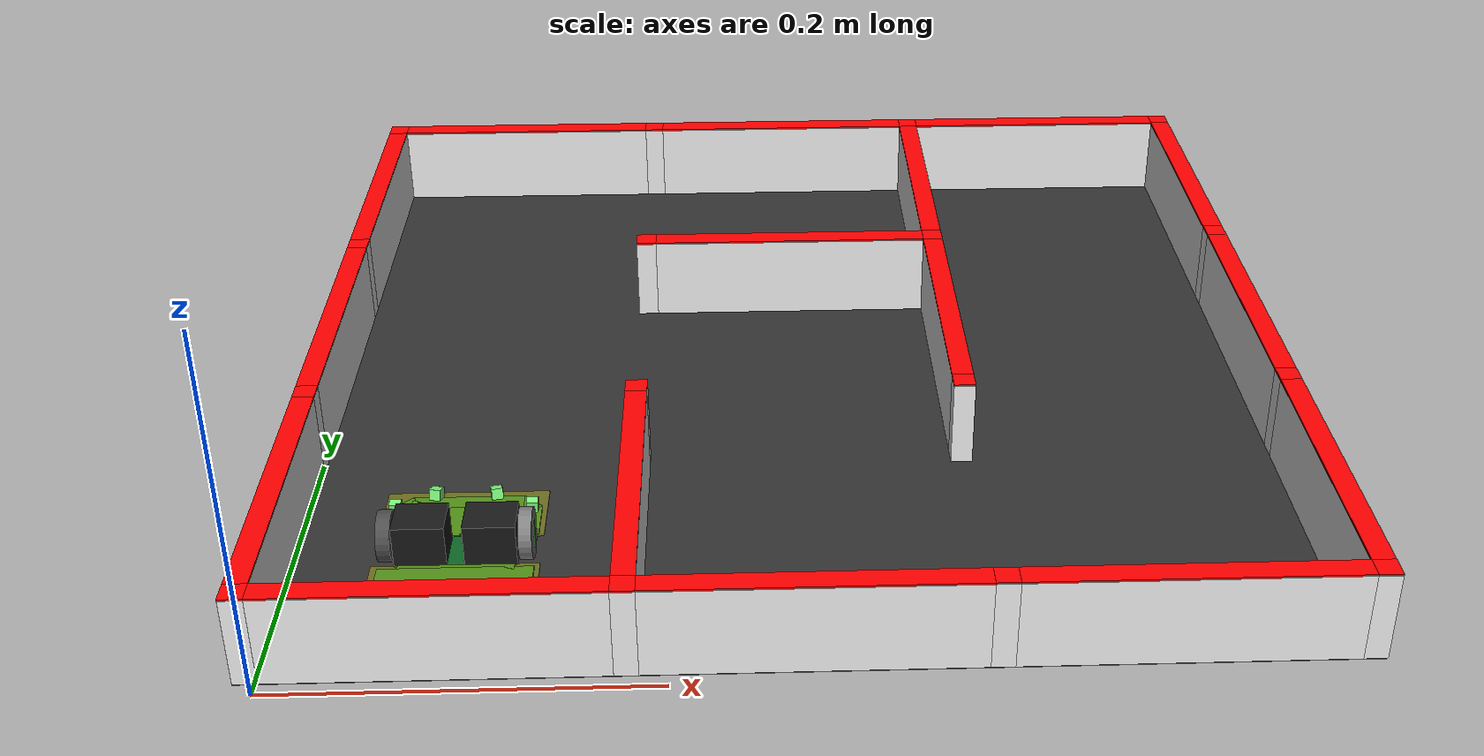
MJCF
<mujoco>
<compiler angle="degree" coordinate="local" inertiafromgeom="true" />
    <option integrator="RK4" timestep="0.0001" />
    <visual>
   <quality shadowsize="0" />
</visual>

    <include file="./micromouse.xml"/>
    <include file="./maze3x3.xml"/>

</mujoco>

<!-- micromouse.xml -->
<mujoco model="micromouse">
<option>
    </option>
    <worldbody>
        <light diffuse=".5 .5 .5" pos="0 0 10" dir="0 0 -1"/>

         <body pos="0.09 0.09 0.015" euler="0 0 90">
            <freejoint />
            <body name="torso">
                <geom name="mein_body1" type="box" friction="0.0 0.0 0.0" size="0.05 0.03 0.0008" rgba="0.05 0.4 0.15 1" pos="0 0 0.002" mass="4.65e-3"/>
                <geom name="mein_body_chip1" type="box" friction="0.0 0.0 0.0" size="0.00707 0.00707 0.0008" rgba="0.05 0.4 0.15 1" pos="0.04 0.03 0.002" euler="0 0 45" mass="4.65e-3"/>
                <geom name="mein_body_chip2" type="box" friction="0.0 0.0 0.0" size="0.00707 0.00707 0.0008" rgba="0.05 0.4 0.15 1" pos="0.04 -0.03 0.002" euler="0 0 45" mass="4.65e-3"/>
                <geom name="mein_body_chip3" type="box" friction="0.0 0.0 0.0" size="0.00707 0.00707 0.0008" rgba="0.05 0.4 0.15 1" pos="-0.04 0.03 0.002" euler="0 0 45" mass="4.65e-3"/>
                <geom name="mein_body_chip4" type="box" friction="0.0 0.0 0.0" size="0.00707 0.00707 0.0008" rgba="0.05 0.4 0.15 1" pos="-0.04 -0.03 0.002" euler="0 0 45" mass="4.65e-3"/>
                <geom name="mein_body4" type="box" friction="0.0 0.0 0.0" size="0.013 0.04 0.0008"  rgba="0.05 0.4 0.15 1" pos="-0.027 0 0.002" mass="4.65e-3"/>
                <geom name="mein_body5" type="box" friction="0.0 0.0 0.0" size="0.013 0.04 0.0008"  rgba="0.05 0.4 0.15 1" pos="0.027 0 0.002" mass="4.65e-3"/>
                <!--接触判定領域（この中に入ってるgeomが接触すると，センサ値としてその値を取得できる）-->
                <site name = "hit_box1" type = "box" size = "0.02 0.043 0.00078" pos="0.033 0 0.003" rgba="1 1 0 0.3"/>
                <site name = "hit_box2" type = "box" size = "0.02 0.043 0.00078" pos="-0.033 0 0.003" rgba="1 1 0 0.3"/>
            </body>

            <site name="sensor_left_front" type="box" size="0.003 0.003 0.003" pos="0.031 0.036 0.01" zaxis="1 0 0.01" rgba=".5 1 .5 1"/>
              <!-- zaxisの３つめ　0.1でちょい上向き -->
            <site name="sensor_left_side" type="box" size="0.003 0.003 0.003" pos="0.043 0.016 0.01" zaxis="0.25 1 0" rgba=".5 1 .5 1"/>
            <site name="sensor_right_front" type="box" size="0.003 0.003 0.003" pos="0.031 -0.036 0.01" zaxis="1 0 0.01" rgba=".5 1 .5 1"/>
            <site name="sensor_right_side" type="box" size="0.003 0.003 0.003" pos="0.043 -0.016 0.01" zaxis="0.25 -1 0" rgba=".5 1 .5 1"/>
            <site name="accerometer" type="sphere" size="0.001 0.001" pos="0 0 0.0"/>
            <site name="gyro" type="box" size="0.001 0.001 0.001" pos="0 0 0"/>
            <site name="velocimeter" type="box" size="0.001 0.001 0.001" pos="0 0 0"/>

             <body name="left wheel" pos="-0.0 0.036 0.0135" zaxis="0 1 0">
                <joint name="left wheel joint" type="hinge" axis="0 0 1" limited="false" damping='9.6e-5' />
                <geom name="left_wheel" type="cylinder" size="0.0135 0.0035" friction="1.0 0 0"  rgba=".3 .3 0.3 1" mass="5e-3"/>
                <site type="box" size = "0.0012 0.008 0.004" rgba=".5 1 .5 1"/>
            </body>

            <body name="right wheel" pos="-0.0 -0.036 0.0135" zaxis="0 1 0">
                <joint name="right wheel joint" type="hinge" axis="0 0 1" limited="false" damping='9.6e-5' />
                <geom type="cylinder" size="0.0135 0.0035" friction="1.0 0 0" mass="5e-3"/> #直径27mmのタイヤ
                <site type="box" size = "0.0012 0.008 0.004" rgba=".5 1 .5 1"/>
            </body>

            <body name="motorbox1" pos="0 -0.018 0.0135" >
                <geom type="box" size="0.0117 0.0135 0.0117" rgba="0.1 0.1 0.1 1" mass="50e-3"/>
            </body>

            <body name="motorbox2" pos="0 0.018 0.0135">
                <geom type="box" size="0.0117 0.0135 0.0117" rgba="0.1 0.1 0.1 1" mass="50e-3"/>
            </body>

            <!--トラッキングカメラを装着-->
            <camera name="camera_name" mode="track" pos="-0.4 0 0.8" euler="0 -30 -90" fovy="60"/>

        </body>
    </worldbody>

    <actuator>
        <motor name="right" joint="right wheel joint" gear="9.0e-3" ctrllimited="true" ctrlrange="-1 1"/> ctrlrangeで入力の値の範囲を決められる
        <motor name="left"  joint="left wheel joint"  gear="9.0e-3" ctrllimited="true" ctrlrange="-1 1"/>
    </actuator>

    <sensor>
        <rangefinder name="LF" site="sensor_left_front" cutoff="0.3"/>
        <rangefinder name="LS" site="sensor_left_side" cutoff="0.3"/>
        <rangefinder name="RF" site="sensor_right_front" cutoff="0.3"/>
        <rangefinder name="RS" site="sensor_right_side" cutoff="0.3"/>
        <touch name = "HB1" site = "hit_box1"/>
        <touch name = "HB2" site = "hit_box2"/>
        <accelerometer name="Accel" site="accerometer"/>
        <gyro name="Gyro" site="gyro" noise="0.001"/>
        <velocimeter name="Veloci" site="velocimeter"/>
    </sensor>

</mujoco>

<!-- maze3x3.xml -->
<mujoco model="maze">
<compiler angle="degree" coordinate="local" inertiafromgeom="true" />
    <option integrator="RK4" />
    <worldbody>
        <!--ベース板-->
        <body name="base_plate" pos="0.27 0.27 0.0125">
        <geom type="plane" mass="0.1" size="0.276 0.276 0.006" rgba="0.2 0.2 0.2 1" friction="0.0 0.0 0.0"/>
        </body>

        <!-- Column 1-->
        <body pos="0.0 0.0 0.037">
            <body pos="0 0 -0.0005">
                <geom type="box" mass="0.01" size="0.006 0.006 0.0245" rgba="1 1 1 1"/>
            </body>
            <!--柱上赤蓋-->
            <body pos="0 0 0.0245">
                <geom type="box" mass="0.01" size="0.006 0.006 0.0005" rgba="1 0 0 1"/>
            </body>
        </body>

        <!-- Column 2-->
        <body pos="0.18 0.0 0.037">
            <body pos="0 0 -0.0005">
                <geom type="box" mass="0.01" size="0.006 0.006 0.0245" rgba="1 1 1 1"/>
            </body>
            <!--柱上赤蓋-->
            <body pos="0 0 0.0245">
                <geom type="box" mass="0.01" size="0.006 0.006 0.0005" rgba="1 0 0 1"/>
            </body>
        </body>

        <!-- Column 3-->
        <body pos="0.36 0.0 0.037">
            <body pos="0 0 -0.0005">
                <geom type="box" mass="0.01" size="0.006 0.006 0.0245" rgba="1 1 1 1"/>
            </body>
            <!--柱上赤蓋-->
            <body pos="0 0 0.0245">
                <geom type="box" mass="0.01" size="0.006 0.006 0.0005" rgba="1 0 0 1"/>
            </body>
        </body>

        <!-- Column 4-->
        <body pos="0.54 0.0 0.037">
            <body pos="0 0 -0.0005">
                <geom type="box" mass="0.01" size="0.006 0.006 0.0245" rgba="1 1 1 1"/>
            </body>
            <!--柱上赤蓋-->
            <body pos="0 0 0.0245">
                <geom type="box" mass="0.01" size="0.006 0.006 0.0005" rgba="1 0 0 1"/>
            </body>
        </body>

        <!-- Column 5-->
        <body pos="0.0 0.18 0.037">
            <body pos="0 0 -0.0005">
                <geom type="box" mass="0.01" size="0.006 0.006 0.0245" rgba="1 1 1 1"/>
            </body>
            <!--柱上赤蓋-->
            <body pos="0 0 0.0245">
                <geom type="box" mass="0.01" size="0.006 0.006 0.0005" rgba="1 0 0 1"/>
            </body>
        </body>

        <!-- Column 6-->
        <body pos="0.18 0.18 0.037">
            <body pos="0 0 -0.0005">
                <geom type="box" mass="0.01" size="0.006 0.006 0.0245" rgba="1 1 1 1"/>
            </body>
            <!--柱上赤蓋-->
            <body pos="0 0 0.0245">
                <geom type="box" mass="0.01" size="0.006 0.006 0.0005" rgba="1 0 0 1"/>
            </body>
        </body>

        <!-- Column 7-->
        <body pos="0.36 0.18 0.037">
            <body pos="0 0 -0.0005">
                <geom type="box" mass="0.01" size="0.006 0.006 0.0245" rgba="1 1 1 1"/>
            </body>
            <!--柱上赤蓋-->
            <body pos="0 0 0.0245">
                <geom type="box" mass="0.01" size="0.006 0.006 0.0005" rgba="1 0 0 1"/>
            </body>
        </body>

        <!-- Column 8-->
        <body pos="0.54 0.18 0.037">
            <body pos="0 0 -0.0005">
                <geom type="box" mass="0.01" size="0.006 0.006 0.0245" rgba="1 1 1 1"/>
            </body>
            <!--柱上赤蓋-->
            <body pos="0 0 0.0245">
                <geom type="box" mass="0.01" size="0.006 0.006 0.0005" rgba="1 0 0 1"/>
            </body>
        </body>

        <!-- Column 9-->
        <body pos="0.0 0.36 0.037">
            <body pos="0 0 -0.0005">
                <geom type="box" mass="0.01" size="0.006 0.006 0.0245" rgba="1 1 1 1"/>
            </body>
            <!--柱上赤蓋-->
            <body pos="0 0 0.0245">
                <geom type="box" mass="0.01" size="0.006 0.006 0.0005" rgba="1 0 0 1"/>
            </body>
        </body>

        <!-- Column 10-->
        <body pos="0.18 0.36 0.037">
            <body pos="0 0 -0.0005">
                <geom type="box" mass="0.01" size="0.006 0.006 0.0245" rgba="1 1 1 1"/>
            </body>
            <!--柱上赤蓋-->
            <body pos="0 0 0.0245">
                <geom type="box" mass="0.01" size="0.006 0.006 0.0005" rgba="1 0 0 1"/>
            </body>
        </body>

        <!-- Column 11-->
        <body pos="0.36 0.36 0.037">
            <body pos="0 0 -0.0005">
                <geom type="box" mass="0.01" size="0.006 0.006 0.0245" rgba="1 1 1 1"/>
            </body>
            <!--柱上赤蓋-->
            <body pos="0 0 0.0245">
                <geom type="box" mass="0.01" size="0.006 0.006 0.0005" rgba="1 0 0 1"/>
            </body>
        </body>

        <!-- Column 12-->
        <body pos="0.54 0.36 0.037">
            <body pos="0 0 -0.0005">
                <geom type="box" mass="0.01" size="0.006 0.006 0.0245" rgba="1 1 1 1"/>
            </body>
            <!--柱上赤蓋-->
            <body pos="0 0 0.0245">
                <geom type="box" mass="0.01" size="0.006 0.006 0.0005" rgba="1 0 0 1"/>
            </body>
        </body>

        <!-- Column 13-->
        <body pos="0.0 0.54 0.037">
            <body pos="0 0 -0.0005">
                <geom type="box" mass="0.01" size="0.006 0.006 0.0245" rgba="1 1 1 1"/>
            </body>
            <!--柱上赤蓋-->
            <body pos="0 0 0.0245">
                <geom type="box" mass="0.01" size="0.006 0.006 0.0005" rgba="1 0 0 1"/>
            </body>
        </body>

        <!-- Column 14-->
        <body pos="0.18 0.54 0.037">
            <body pos="0 0 -0.0005">
                <geom type="box" mass="0.01" size="0.006 0.006 0.0245" rgba="1 1 1 1"/>
            </body>
            <!--柱上赤蓋-->
            <body pos="0 0 0.0245">
                <geom type="box" mass="0.01" size="0.006 0.006 0.0005" rgba="1 0 0 1"/>
            </body>
        </body>

        <!-- Column 15-->
        <body pos="0.36 0.54 0.037">
            <body pos="0 0 -0.0005">
                <geom type="box" mass="0.01" size="0.006 0.006 0.0245" rgba="1 1 1 1"/>
            </body>
            <!--柱上赤蓋-->
            <body pos="0 0 0.0245">
                <geom type="box" mass="0.01" size="0.006 0.006 0.0005" rgba="1 0 0 1"/>
            </body>
        </body>

        <!-- Column 16-->
        <body pos="0.54 0.54 0.037">
            <body pos="0 0 -0.0005">
                <geom type="box" mass="0.01" size="0.006 0.006 0.0245" rgba="1 1 1 1"/>
            </body>
            <!--柱上赤蓋-->
            <body pos="0 0 0.0245">
                <geom type="box" mass="0.01" size="0.006 0.006 0.0005" rgba="1 0 0 1"/>
            </body>
        </body>

        <!-- Wall 1-->
        <body pos="0.09 0.0 0.037">
            <body pos="0 0 -0.0005">
                <geom type="box" mass="0.01" size="0.084 0.006 0.0245" rgba="1 1 1 1"/>
            </body>
            <!--壁上赤蓋-->
            <body pos="0 0 0.0245">
                <geom type="box" mass="0.01" size="0.084 0.006 0.0005" rgba="1 0 0 1"/>
            </body>
        </body>

        <!-- Wall 2-->
        <body pos="0.27 0.0 0.037">
            <body pos="0 0 -0.0005">
                <geom type="box" mass="0.01" size="0.084 0.006 0.0245" rgba="1 1 1 1"/>
            </body>
            <!--壁上赤蓋-->
            <body pos="0 0 0.0245">
                <geom type="box" mass="0.01" size="0.084 0.006 0.0005" rgba="1 0 0 1"/>
            </body>
        </body>

        <!-- Wall 3-->
        <body pos="0.44999999999999996 0.0 0.037">
            <body pos="0 0 -0.0005">
                <geom type="box" mass="0.01" size="0.084 0.006 0.0245" rgba="1 1 1 1"/>
            </body>
            <!--壁上赤蓋-->
            <body pos="0 0 0.0245">
                <geom type="box" mass="0.01" size="0.084 0.006 0.0005" rgba="1 0 0 1"/>
            </body>
        </body>

        <!-- Wall 4-->
        <body pos="0.27 0.36 0.037">
            <body pos="0 0 -0.0005">
                <geom type="box" mass="0.01" size="0.084 0.006 0.0245" rgba="1 1 1 1"/>
            </body>
            <!--壁上赤蓋-->
            <body pos="0 0 0.0245">
                <geom type="box" mass="0.01" size="0.084 0.006 0.0005" rgba="1 0 0 1"/>
            </body>
        </body>

        <!-- Wall 5-->
        <body pos="0.09 0.54 0.037">
            <body pos="0 0 -0.0005">
                <geom type="box" mass="0.01" size="0.084 0.006 0.0245" rgba="1 1 1 1"/>
            </body>
            <!--壁上赤蓋-->
            <body pos="0 0 0.0245">
                <geom type="box" mass="0.01" size="0.084 0.006 0.0005" rgba="1 0 0 1"/>
            </body>
        </body>

        <!-- Wall 6-->
        <body pos="0.27 0.54 0.037">
            <body pos="0 0 -0.0005">
                <geom type="box" mass="0.01" size="0.084 0.006 0.0245" rgba="1 1 1 1"/>
            </body>
            <!--壁上赤蓋-->
            <body pos="0 0 0.0245">
                <geom type="box" mass="0.01" size="0.084 0.006 0.0005" rgba="1 0 0 1"/>
            </body>
        </body>

        <!-- Wall 7-->
        <body pos="0.44999999999999996 0.54 0.037">
            <body pos="0 0 -0.0005">
                <geom type="box" mass="0.01" size="0.084 0.006 0.0245" rgba="1 1 1 1"/>
            </body>
            <!--壁上赤蓋-->
            <body pos="0 0 0.0245">
                <geom type="box" mass="0.01" size="0.084 0.006 0.0005" rgba="1 0 0 1"/>
            </body>
        </body>

        <!-- Wall 8-->
        <body pos="0.0 0.09 0.037">
            <body pos="0 0 -0.0005">
                <geom type="box" mass="0.01" size="0.006 0.084 0.0245" rgba="1 1 1 1"/>
            </body>
            <!--壁上赤蓋-->
            <body pos="0 0 0.0245">
                <geom type="box" mass="0.01" size="0.006 0.084 0.0005" rgba="1 0 0 1"/>
            </body>
        </body>

        <!-- Wall 9-->
        <body pos="0.18 0.09 0.037">
            <body pos="0 0 -0.0005">
                <geom type="box" mass="0.01" size="0.006 0.084 0.0245" rgba="1 1 1 1"/>
            </body>
            <!--壁上赤蓋-->
            <body pos="0 0 0.0245">
                <geom type="box" mass="0.01" size="0.006 0.084 0.0005" rgba="1 0 0 1"/>
            </body>
        </body>

        <!-- Wall 10-->
        <body pos="0.54 0.09 0.037">
            <body pos="0 0 -0.0005">
                <geom type="box" mass="0.01" size="0.006 0.084 0.0245" rgba="1 1 1 1"/>
            </body>
            <!--壁上赤蓋-->
            <body pos="0 0 0.0245">
                <geom type="box" mass="0.01" size="0.006 0.084 0.0005" rgba="1 0 0 1"/>
            </body>
        </body>

        <!-- Wall 11-->
        <body pos="0.0 0.27 0.037">
            <body pos="0 0 -0.0005">
                <geom type="box" mass="0.01" size="0.006 0.084 0.0245" rgba="1 1 1 1"/>
            </body>
            <!--壁上赤蓋-->
            <body pos="0 0 0.0245">
                <geom type="box" mass="0.01" size="0.006 0.084 0.0005" rgba="1 0 0 1"/>
            </body>
        </body>

        <!-- Wall 12-->
        <body pos="0.36 0.27 0.037">
            <body pos="0 0 -0.0005">
                <geom type="box" mass="0.01" size="0.006 0.084 0.0245" rgba="1 1 1 1"/>
            </body>
            <!--壁上赤蓋-->
            <body pos="0 0 0.0245">
                <geom type="box" mass="0.01" size="0.006 0.084 0.0005" rgba="1 0 0 1"/>
            </body>
        </body>

        <!-- Wall 13-->
        <body pos="0.54 0.27 0.037">
            <body pos="0 0 -0.0005">
                <geom type="box" mass="0.01" size="0.006 0.084 0.0245" rgba="1 1 1 1"/>
            </body>
            <!--壁上赤蓋-->
            <body pos="0 0 0.0245">
                <geom type="box" mass="0.01" size="0.006 0.084 0.0005" rgba="1 0 0 1"/>
            </body>
        </body>

        <!-- Wall 14-->
        <body pos="0.0 0.44999999999999996 0.037">
            <body pos="0 0 -0.0005">
                <geom type="box" mass="0.01" size="0.006 0.084 0.0245" rgba="1 1 1 1"/>
            </body>
            <!--壁上赤蓋-->
            <body pos="0 0 0.0245">
                <geom type="box" mass="0.01" size="0.006 0.084 0.0005" rgba="1 0 0 1"/>
            </body>
        </body>

        <!-- Wall 15-->
        <body pos="0.36 0.44999999999999996 0.037">
            <body pos="0 0 -0.0005">
                <geom type="box" mass="0.01" size="0.006 0.084 0.0245" rgba="1 1 1 1"/>
            </body>
            <!--壁上赤蓋-->
            <body pos="0 0 0.0245">
                <geom type="box" mass="0.01" size="0.006 0.084 0.0005" rgba="1 0 0 1"/>
            </body>
        </body>

        <!-- Wall 16-->
        <body pos="0.54 0.44999999999999996 0.037">
            <body pos="0 0 -0.0005">
                <geom type="box" mass="0.01" size="0.006 0.084 0.0245" rgba="1 1 1 1"/>
            </body>
            <!--壁上赤蓋-->
            <body pos="0 0 0.0245">
                <geom type="box" mass="0.01" size="0.006 0.084 0.0005" rgba="1 0 0 1"/>
            </body>
        </body>
    </worldbody>
</mujoco>
